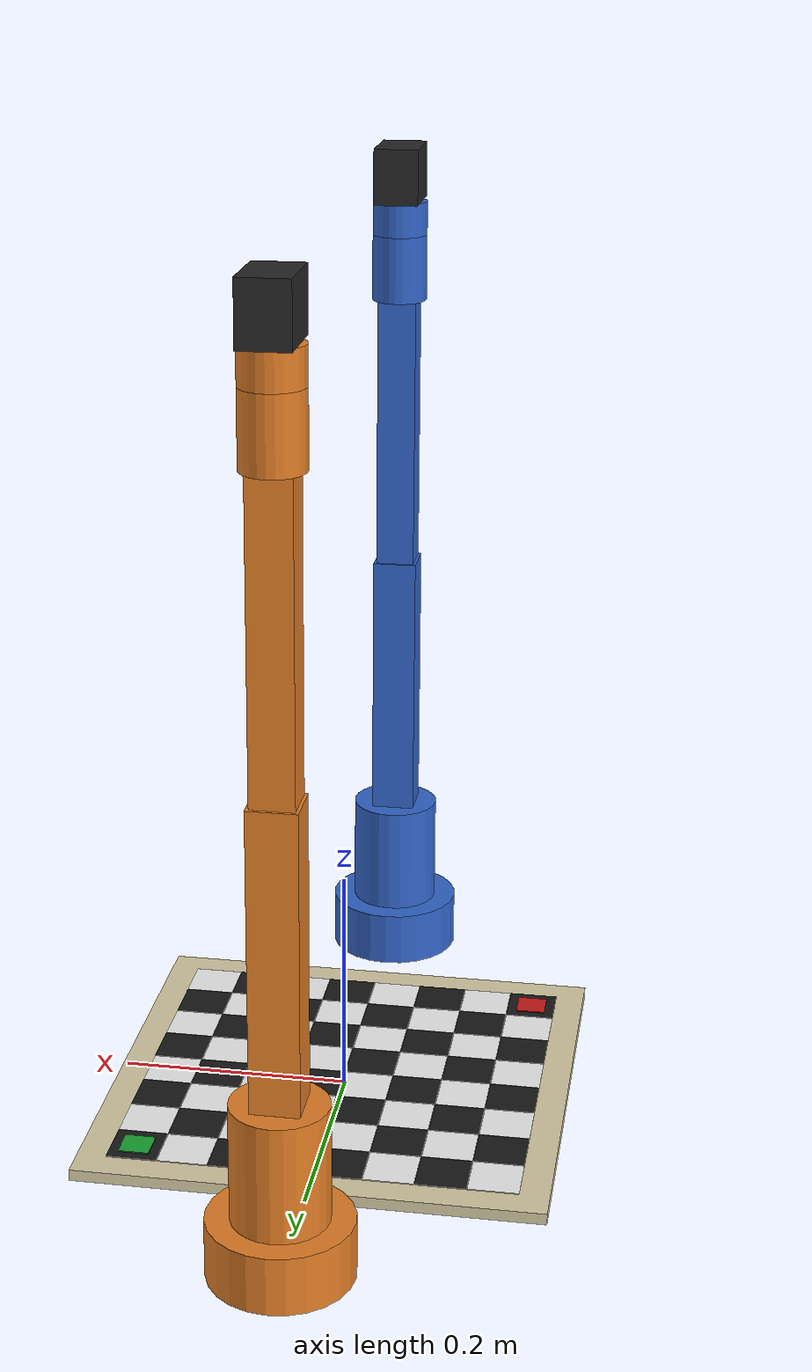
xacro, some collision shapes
<?xml version="1.0"?>
<robot name="dual_chess" xmlns:xacro="http://www.ros.org/wiki/xacro">

  <xacro:arg name="robot1_enabled" default="true"/>
  <xacro:arg name="robot2_enabled" default="true"/>
  <xacro:arg name="sim_gazebo"     default="false"/>
  <xacro:arg name="use_meshes"     default="false"/>

  <xacro:include filename="$(find dual_chess_description)/urdf/common/materials.xacro"/>
  <xacro:include filename="$(find dual_chess_description)/urdf/board/board.macro.xacro"/>
  <xacro:include filename="$(find dual_chess_description)/urdf/arm/arm.macro.xacro"/>
  <xacro:include filename="$(find dual_chess_description)/urdf/arm/arm.gazebo.xacro"/>

  <link name="world"/>

  <xacro:chess_board parent="world"/>

  <!-- Robot 1 (white side): -Y of the board, facing +Y.
       PLACEHOLDER pose; "rotated copy" vs true mirror is for M1/M3 to decide (proposal: "mirrored configurations"). -->
  <xacro:if value="$(arg robot1_enabled)">
    <xacro:chess_arm prefix="robot1_" parent="world" material="robot1_blue" use_meshes="$(arg use_meshes)">
      <origin xyz="0 ${-robot_base_offset} 0" rpy="0 0 ${pi/2}"/>
    </xacro:chess_arm>
  </xacro:if>

  <!-- Robot 2 (black side): +Y of the board, facing -Y. -->
  <xacro:if value="$(arg robot2_enabled)">
    <xacro:chess_arm prefix="robot2_" parent="world" material="robot2_orange" use_meshes="$(arg use_meshes)">
      <origin xyz="0 ${robot_base_offset} 0" rpy="0 0 ${-pi/2}"/>
    </xacro:chess_arm>
  </xacro:if>

  <!-- Gazebo-only parts -->
  <xacro:if value="$(arg sim_gazebo)">
    <!-- Publishes all joint states of the model to gz topic
         /world/chess_world/model/dual_chess/joint_state (bridged to /joint_states). -->
    <gazebo>
      <plugin filename="gz-sim-joint-state-publisher-system"
              name="gz::sim::systems::JointStatePublisher"/>
    </gazebo>
    <xacro:if value="$(arg robot1_enabled)">
      <xacro:chess_arm_gz prefix="robot1_" ns="robot1"/>
    </xacro:if>
    <xacro:if value="$(arg robot2_enabled)">
      <xacro:chess_arm_gz prefix="robot2_" ns="robot2"/>
    </xacro:if>
  </xacro:if>

</robot>

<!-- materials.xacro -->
<!-- Materials are defined ONCE (URDF material names are global). -->
<robot xmlns:xacro="http://www.ros.org/wiki/xacro">
  <material name="robot1_blue"><color rgba="0.20 0.40 0.80 1.0"/></material>
  <material name="robot2_orange"><color rgba="0.90 0.50 0.15 1.0"/></material>
  <material name="gripper_dark"><color rgba="0.15 0.15 0.15 1.0"/></material>
  <material name="board_wood"><color rgba="0.85 0.80 0.65 1.0"/></material>
  <material name="square_light"><color rgba="0.95 0.95 0.95 1.0"/></material>
  <material name="square_dark"><color rgba="0.10 0.10 0.10 1.0"/></material>
  <material name="marker_a1"><color rgba="0.80 0.10 0.10 1.0"/></material>
  <material name="marker_h8"><color rgba="0.10 0.65 0.20 1.0"/></material>
</robot>

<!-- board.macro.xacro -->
<robot xmlns:xacro="http://www.ros.org/wiki/xacro">
  <xacro:include filename="$(find dual_chess_description)/urdf/board/board_params_cad.xacro"/>

  <xacro:macro name="chess_board" params="parent">
    <link name="board_link">
      <visual name="board_cad_visual">
        <origin xyz="${-board_size/2} ${board_size/2} ${-board_thickness/2}"
                rpy="${pi/2} 0 0"/>
        <geometry>
          <mesh filename="package://dual_chess_description/meshes/chess_board/Board_1_original.STL"
                scale="0.001 0.001 0.001"/>
        </geometry>
        <!-- STL has no per-square material colours. Preserve its geometry. -->
        <material name="board_wood"/>
      </visual>

      <!-- Board squares are separate fixed child links below. RViz may apply the
           first material to all visuals if they share a single URDF link. -->
      <!-- Collision uses a simplified foundation (z=0..10 mm). -->
      <collision name="playing_area_collision">
        <origin xyz="0 0 ${-board_thickness/2 + board_play_surface_height/2}" rpy="0 0 0"/>
        <geometry><box size="${board_size} ${board_size} ${board_play_surface_height}"/></geometry>
      </collision>
      <!-- Four raised perimeter rails, preserving the 35cm playing area. -->
      <collision name="rim_left_collision">
        <origin xyz="${-board_size/2 + board_rim_width/2} 0 ${board_play_surface_height/2}"/>
        <geometry><box size="${board_rim_width} ${board_size} ${board_thickness - board_play_surface_height}"/></geometry>
      </collision>
      <collision name="rim_right_collision">
        <origin xyz="${board_size/2 - board_rim_width/2} 0 ${board_play_surface_height/2}"/>
        <geometry><box size="${board_rim_width} ${board_size} ${board_thickness - board_play_surface_height}"/></geometry>
      </collision>
      <collision name="rim_front_collision">
        <origin xyz="0 ${-board_size/2 + board_rim_width/2} ${board_play_surface_height/2}"/>
        <geometry><box size="${board_play_size} ${board_rim_width} ${board_thickness - board_play_surface_height}"/></geometry>
      </collision>
      <collision name="rim_back_collision">
        <origin xyz="0 ${board_size/2 - board_rim_width/2} ${board_play_surface_height/2}"/>
        <geometry><box size="${board_play_size} ${board_rim_width} ${board_thickness - board_play_surface_height}"/></geometry>
      </collision>

      <inertial>
        <origin xyz="0 0 0" rpy="0 0 0"/>
        <mass value="1.0"/>
        <inertia ixx="${(board_size*board_size+board_thickness*board_thickness)/12.0}" ixy="0" ixz="0"
                 iyy="${(board_size*board_size+board_thickness*board_thickness)/12.0}" iyz="0"
                 izz="${(2*board_size*board_size)/12.0}"/>
      </inertial>
    </link>

    <joint name="board_joint" type="fixed">
      <parent link="${parent}"/>
      <child link="board_link"/>
      <!-- Board rests on world z=0; link origin at the board vertical centre. -->
      <origin xyz="0 0 ${board_thickness/2}" rpy="0 0 0"/>
    </joint>

    <!-- Chessboard frame at the ACTUAL playing-square top plane z=10mm;
         raised outer frame reaches z=20.1892mm. -->
    <link name="board_surface"/>
    <joint name="board_surface_joint" type="fixed">
      <parent link="board_link"/>
      <child link="board_surface"/>
      <origin xyz="0 0 ${board_play_surface_height-board_thickness/2}" rpy="0 0 0"/>
    </joint>

    <xacro:property name="square_visual_size" value="${board_square*0.985}"/>
    <xacro:property name="square_visual_height" value="0.0008"/>
    <xacro:property name="square_visual_above_surface" value="0.0002"/>

    <link name="board_square_a1">
      <visual name="square_a1_visual">
        <origin xyz="0 0 ${square_visual_above_surface+square_visual_height/2}" rpy="0 0 0"/>
        <geometry><box size="${square_visual_size} ${square_visual_size} ${square_visual_height}"/></geometry>
        <material name="square_dark"/>
      </visual>
    </link>
    <joint name="board_square_a1_joint" type="fixed">
      <parent link="board_surface"/>
      <child link="board_square_a1"/>
      <origin xyz="${-3.5*board_square} ${-3.5*board_square} 0" rpy="0 0 0"/>
    </joint>

    <link name="board_square_b1">
      <visual name="square_b1_visual">
        <origin xyz="0 0 ${square_visual_above_surface+square_visual_height/2}" rpy="0 0 0"/>
        <geometry><box size="${square_visual_size} ${square_visual_size} ${square_visual_height}"/></geometry>
        <material name="square_light"/>
      </visual>
    </link>
    <joint name="board_square_b1_joint" type="fixed">
      <parent link="board_surface"/>
      <child link="board_square_b1"/>
      <origin xyz="${-2.5*board_square} ${-3.5*board_square} 0" rpy="0 0 0"/>
    </joint>

    <link name="board_square_c1">
      <visual name="square_c1_visual">
        <origin xyz="0 0 ${square_visual_above_surface+square_visual_height/2}" rpy="0 0 0"/>
        <geometry><box size="${square_visual_size} ${square_visual_size} ${square_visual_height}"/></geometry>
        <material name="square_dark"/>
      </visual>
    </link>
    <joint name="board_square_c1_joint" type="fixed">
      <parent link="board_surface"/>
      <child link="board_square_c1"/>
      <origin xyz="${-1.5*board_square} ${-3.5*board_square} 0" rpy="0 0 0"/>
    </joint>

    <link name="board_square_d1">
      <visual name="square_d1_visual">
        <origin xyz="0 0 ${square_visual_above_surface+square_visual_height/2}" rpy="0 0 0"/>
        <geometry><box size="${square_visual_size} ${square_visual_size} ${square_visual_height}"/></geometry>
        <material name="square_light"/>
      </visual>
    </link>
    <joint name="board_square_d1_joint" type="fixed">
      <parent link="board_surface"/>
      <child link="board_square_d1"/>
      <origin xyz="${-0.5*board_square} ${-3.5*board_square} 0" rpy="0 0 0"/>
    </joint>

    <link name="board_square_e1">
      <visual name="square_e1_visual">
        <origin xyz="0 0 ${square_visual_above_surface+square_visual_height/2}" rpy="0 0 0"/>
        <geometry><box size="${square_visual_size} ${square_visual_size} ${square_visual_height}"/></geometry>
        <material name="square_dark"/>
      </visual>
    </link>
    <joint name="board_square_e1_joint" type="fixed">
      <parent link="board_surface"/>
      <child link="board_square_e1"/>
      <origin xyz="${0.5*board_square} ${-3.5*board_square} 0" rpy="0 0 0"/>
    </joint>

    <link name="board_square_f1">
      <visual name="square_f1_visual">
        <origin xyz="0 0 ${square_visual_above_surface+square_visual_height/2}" rpy="0 0 0"/>
        <geometry><box size="${square_visual_size} ${square_visual_size} ${square_visual_height}"/></geometry>
        <material name="square_light"/>
      </visual>
    </link>
    <joint name="board_square_f1_joint" type="fixed">
      <parent link="board_surface"/>
      <child link="board_square_f1"/>
      <origin xyz="${1.5*board_square} ${-3.5*board_square} 0" rpy="0 0 0"/>
    </joint>

    <link name="board_square_g1">
      <visual name="square_g1_visual">
        <origin xyz="0 0 ${square_visual_above_surface+square_visual_height/2}" rpy="0 0 0"/>
        <geometry><box size="${square_visual_size} ${square_visual_size} ${square_visual_height}"/></geometry>
        <material name="square_dark"/>
      </visual>
    </link>
    <joint name="board_square_g1_joint" type="fixed">
      <parent link="board_surface"/>
      <child link="board_square_g1"/>
      <origin xyz="${2.5*board_square} ${-3.5*board_square} 0" rpy="0 0 0"/>
    </joint>

    <link name="board_square_h1">
      <visual name="square_h1_visual">
        <origin xyz="0 0 ${square_visual_above_surface+square_visual_height/2}" rpy="0 0 0"/>
        <geometry><box size="${square_visual_size} ${square_visual_size} ${square_visual_height}"/></geometry>
        <material name="square_light"/>
      </visual>
    </link>
    <joint name="board_square_h1_joint" type="fixed">
      <parent link="board_surface"/>
      <child link="board_square_h1"/>
      <origin xyz="${3.5*board_square} ${-3.5*board_square} 0" rpy="0 0 0"/>
    </joint>

    <link name="board_square_a2">
      <visual name="square_a2_visual">
        <origin xyz="0 0 ${square_visual_above_surface+square_visual_height/2}" rpy="0 0 0"/>
        <geometry><box size="${square_visual_size} ${square_visual_size} ${square_visual_height}"/></geometry>
        <material name="square_light"/>
      </visual>
    </link>
    <joint name="board_square_a2_joint" type="fixed">
      <parent link="board_surface"/>
      <child link="board_square_a2"/>
      <origin xyz="${-3.5*board_square} ${-2.5*board_square} 0" rpy="0 0 0"/>
    </joint>

    <link name="board_square_b2">
      <visual name="square_b2_visual">
        <origin xyz="0 0 ${square_visual_above_surface+square_visual_height/2}" rpy="0 0 0"/>
        <geometry><box size="${square_visual_size} ${square_visual_size} ${square_visual_height}"/></geometry>
        <material name="square_dark"/>
      </visual>
    </link>
    <joint name="board_square_b2_joint" type="fixed">
      <parent link="board_surface"/>
      <child link="board_square_b2"/>
      <origin xyz="${-2.5*board_square} ${-2.5*board_square} 0" rpy="0 0 0"/>
    </joint>

    <link name="board_square_c2">
      <visual name="square_c2_visual">
        <origin xyz="0 0 ${square_visual_above_surface+square_visual_height/2}" rpy="0 0 0"/>
        <geometry><box size="${square_visual_size} ${square_visual_size} ${square_visual_height}"/></geometry>
        <material name="square_light"/>
      </visual>
    </link>
    <joint name="board_square_c2_joint" type="fixed">
      <parent link="board_surface"/>
      <child link="board_square_c2"/>
      <origin xyz="${-1.5*board_square} ${-2.5*board_square} 0" rpy="0 0 0"/>
    </joint>

    <link name="board_square_d2">
      <visual name="square_d2_visual">
        <origin xyz="0 0 ${square_visual_above_surface+square_visual_height/2}" rpy="0 0 0"/>
        <geometry><box size="${square_visual_size} ${square_visual_size} ${square_visual_height}"/></geometry>
        <material name="square_dark"/>
      </visual>
    </link>
    <joint name="board_square_d2_joint" type="fixed">
      <parent link="board_surface"/>
      <child link="board_square_d2"/>
      <origin xyz="${-0.5*board_square} ${-2.5*board_square} 0" rpy="0 0 0"/>
    </joint>

    <link name="board_square_e2">
      <visual name="square_e2_visual">
        <origin xyz="0 0 ${square_visual_above_surface+square_visual_height/2}" rpy="0 0 0"/>
        <geometry><box size="${square_visual_size} ${square_visual_size} ${square_visual_height}"/></geometry>
        <material name="square_light"/>
      </visual>
    </link>
    <joint name="board_square_e2_joint" type="fixed">
      <parent link="board_surface"/>
      <child link="board_square_e2"/>
      <origin xyz="${0.5*board_square} ${-2.5*board_square} 0" rpy="0 0 0"/>
    </joint>

    <link name="board_square_f2">
      <visual name="square_f2_visual">
        <origin xyz="0 0 ${square_visual_above_surface+square_visual_height/2}" rpy="0 0 0"/>
        <geometry><box size="${square_visual_size} ${square_visual_size} ${square_visual_height}"/></geometry>
        <material name="square_dark"/>
      </visual>
    </link>
    <joint name="board_square_f2_joint" type="fixed">
      <parent link="board_surface"/>
      <child link="board_square_f2"/>
      <origin xyz="${1.5*board_square} ${-2.5*board_square} 0" rpy="0 0 0"/>
    </joint>

    <link name="board_square_g2">
      <visual name="square_g2_visual">
        <origin xyz="0 0 ${square_visual_above_surface+square_visual_height/2}" rpy="0 0 0"/>
        <geometry><box size="${square_visual_size} ${square_visual_size} ${square_visual_height}"/></geometry>
        <material name="square_light"/>
      </visual>
    </link>
    <joint name="board_square_g2_joint" type="fixed">
      <parent link="board_surface"/>
      <child link="board_square_g2"/>
      <origin xyz="${2.5*board_square} ${-2.5*board_square} 0" rpy="0 0 0"/>
    </joint>

    <link name="board_square_h2">
      <visual name="square_h2_visual">
        <origin xyz="0 0 ${square_visual_above_surface+square_visual_height/2}" rpy="0 0 0"/>
        <geometry><box size="${square_visual_size} ${square_visual_size} ${square_visual_height}"/></geometry>
        <material name="square_dark"/>
      </visual>
    </link>
    <joint name="board_square_h2_joint" type="fixed">
      <parent link="board_surface"/>
      <child link="board_square_h2"/>
      <origin xyz="${3.5*board_square} ${-2.5*board_square} 0" rpy="0 0 0"/>
    </joint>

    <link name="board_square_a3">
      <visual name="square_a3_visual">
        <origin xyz="0 0 ${square_visual_above_surface+square_visual_height/2}" rpy="0 0 0"/>
        <geometry><box size="${square_visual_size} ${square_visual_size} ${square_visual_height}"/></geometry>
        <material name="square_dark"/>
      </visual>
    </link>
    <joint name="board_square_a3_joint" type="fixed">
      <parent link="board_surface"/>
      <child link="board_square_a3"/>
      <origin xyz="${-3.5*board_square} ${-1.5*board_square} 0" rpy="0 0 0"/>
    </joint>

    <link name="board_square_b3">
      <visual name="square_b3_visual">
        <origin xyz="0 0 ${square_visual_above_surface+square_visual_height/2}" rpy="0 0 0"/>
        <geometry><box size="${square_visual_size} ${square_visual_size} ${square_visual_height}"/></geometry>
        <material name="square_light"/>
      </visual>
    </link>
    <joint name="board_square_b3_joint" type="fixed">
      <parent link="board_surface"/>
      <child link="board_square_b3"/>
      <origin xyz="${-2.5*board_square} ${-1.5*board_square} 0" rpy="0 0 0"/>
    </joint>

    <link name="board_square_c3">
      <visual name="square_c3_visual">
        <origin xyz="0 0 ${square_visual_above_surface+square_visual_height/2}" rpy="0 0 0"/>
        <geometry><box size="${square_visual_size} ${square_visual_size} ${square_visual_height}"/></geometry>
        <material name="square_dark"/>
      </visual>
    </link>
    <joint name="board_square_c3_joint" type="fixed">
      <parent link="board_surface"/>
      <child link="board_square_c3"/>
      <origin xyz="${-1.5*board_square} ${-1.5*board_square} 0" rpy="0 0 0"/>
    </joint>

    <link name="board_square_d3">
      <visual name="square_d3_visual">
        <origin xyz="0 0 ${square_visual_above_surface+square_visual_height/2}" rpy="0 0 0"/>
        <geometry><box size="${square_visual_size} ${square_visual_size} ${square_visual_height}"/></geometry>
        <material name="square_light"/>
      </visual>
    </link>
    <joint name="board_square_d3_joint" type="fixed">
      <parent link="board_surface"/>
      <child link="board_square_d3"/>
      <origin xyz="${-0.5*board_square} ${-1.5*board_square} 0" rpy="0 0 0"/>
    </joint>

    <link name="board_square_e3">
      <visual name="square_e3_visual">
        <origin xyz="0 0 ${square_visual_above_surface+square_visual_height/2}" rpy="0 0 0"/>
        <geometry><box size="${square_visual_size} ${square_visual_size} ${square_visual_height}"/></geometry>
        <material name="square_dark"/>
      </visual>
    </link>
    <joint name="board_square_e3_joint" type="fixed">
      <parent link="board_surface"/>
      <child link="board_square_e3"/>
      <origin xyz="${0.5*board_square} ${-1.5*board_square} 0" rpy="0 0 0"/>
    </joint>

    <link name="board_square_f3">
      <visual name="square_f3_visual">
        <origin xyz="0 0 ${square_visual_above_surface+square_visual_height/2}" rpy="0 0 0"/>
        <geometry><box size="${square_visual_size} ${square_visual_size} ${square_visual_height}"/></geometry>
        <material name="square_light"/>
      </visual>
    </link>
    <joint name="board_square_f3_joint" type="fixed">
      <parent link="board_surface"/>
      <child link="board_square_f3"/>
      <origin xyz="${1.5*board_square} ${-1.5*board_square} 0" rpy="0 0 0"/>
    </joint>

    <link name="board_square_g3">
      <visual name="square_g3_visual">
        <origin xyz="0 0 ${square_visual_above_surface+square_visual_height/2}" rpy="0 0 0"/>
        <geometry><box size="${square_visual_size} ${square_visual_size} ${square_visual_height}"/></geometry>
        <material name="square_dark"/>
      </visual>
    </link>
    <joint name="board_square_g3_joint" type="fixed">
      <parent link="board_surface"/>
      <child link="board_square_g3"/>
      <origin xyz="${2.5*board_square} ${-1.5*board_square} 0" rpy="0 0 0"/>
    </joint>

    <link name="board_square_h3">
      <visual name="square_h3_visual">
        <origin xyz="0 0 ${square_visual_above_surface+square_visual_height/2}" rpy="0 0 0"/>
        <geometry><box size="${square_visual_size} ${square_visual_size} ${square_visual_height}"/></geometry>
        <material name="square_light"/>
      </visual>
    </link>
    <joint name="board_square_h3_joint" type="fixed">
      <parent link="board_surface"/>
      <child link="board_square_h3"/>
      <origin xyz="${3.5*board_square} ${-1.5*board_square} 0" rpy="0 0 0"/>
    </joint>

    <link name="board_square_a4">
      <visual name="square_a4_visual">
        <origin xyz="0 0 ${square_visual_above_surface+square_visual_height/2}" rpy="0 0 0"/>
        <geometry><box size="${square_visual_size} ${square_visual_size} ${square_visual_height}"/></geometry>
        <material name="square_light"/>
      </visual>
    </link>
    <joint name="board_square_a4_joint" type="fixed">
      <parent link="board_surface"/>
      <child link="board_square_a4"/>
      <origin xyz="${-3.5*board_square} ${-0.5*board_square} 0" rpy="0 0 0"/>
    </joint>

    <link name="board_square_b4">
      <visual name="square_b4_visual">
        <origin xyz="0 0 ${square_visual_above_surface+square_visual_height/2}" rpy="0 0 0"/>
        <geometry><box size="${square_visual_size} ${square_visual_size} ${square_visual_height}"/></geometry>
        <material name="square_dark"/>
      </visual>
    </link>
    <joint name="board_square_b4_joint" type="fixed">
      <parent link="board_surface"/>
      <child link="board_square_b4"/>
      <origin xyz="${-2.5*board_square} ${-0.5*board_square} 0" rpy="0 0 0"/>
    </joint>

    <link name="board_square_c4">
      <visual name="square_c4_visual">
        <origin xyz="0 0 ${square_visual_above_surface+square_visual_height/2}" rpy="0 0 0"/>
        <geometry><box size="${square_visual_size} ${square_visual_size} ${square_visual_height}"/></geometry>
        <material name="square_light"/>
      </visual>
    </link>
    <joint name="board_square_c4_joint" type="fixed">
      <parent link="board_surface"/>
      <child link="board_square_c4"/>
      <origin xyz="${-1.5*board_square} ${-0.5*board_square} 0" rpy="0 0 0"/>
    </joint>

    <link name="board_square_d4">
      <visual name="square_d4_visual">
        <origin xyz="0 0 ${square_visual_above_surface+square_visual_height/2}" rpy="0 0 0"/>
        <geometry><box size="${square_visual_size} ${square_visual_size} ${square_visual_height}"/></geometry>
        <material name="square_dark"/>
      </visual>
    </link>
    <joint name="board_square_d4_joint" type="fixed">
      <parent link="board_surface"/>
      <child link="board_square_d4"/>
      <origin xyz="${-0.5*board_square} ${-0.5*board_square} 0" rpy="0 0 0"/>
    </joint>

    <link name="board_square_e4">
      <visual name="square_e4_visual">
        <origin xyz="0 0 ${square_visual_above_surface+square_visual_height/2}" rpy="0 0 0"/>
        <geometry><box size="${square_visual_size} ${square_visual_size} ${square_visual_height}"/></geometry>
        <material name="square_light"/>
      </visual>
    </link>
    <joint name="board_square_e4_joint" type="fixed">
      <parent link="board_surface"/>
      <child link="board_square_e4"/>
      <origin xyz="${0.5*board_square} ${-0.5*board_square} 0" rpy="0 0 0"/>
    </joint>

    <link name="board_square_f4">
      <visual name="square_f4_visual">
        <origin xyz="0 0 ${square_visual_above_surface+square_visual_height/2}" rpy="0 0 0"/>
        <geometry><box size="${square_visual_size} ${square_visual_size} ${square_visual_height}"/></geometry>
        <material name="square_dark"/>
      </visual>
    </link>
    <joint name="board_square_f4_joint" type="fixed">
      <parent link="board_surface"/>
      <child link="board_square_f4"/>
      <origin xyz="${1.5*board_square} ${-0.5*board_square} 0" rpy="0 0 0"/>
    </joint>

    <link name="board_square_g4">
      <visual name="square_g4_visual">
        <origin xyz="0 0 ${square_visual_above_surface+square_visual_height/2}" rpy="0 0 0"/>
        <geometry><box size="${square_visual_size} ${square_visual_size} ${square_visual_height}"/></geometry>
        <material name="square_light"/>
      </visual>
    </link>
    <joint name="board_square_g4_joint" type="fixed">
      <parent link="board_surface"/>
      <child link="board_square_g4"/>
      <origin xyz="${2.5*board_square} ${-0.5*board_square} 0" rpy="0 0 0"/>
    </joint>

    <link name="board_square_h4">
      <visual name="square_h4_visual">
        <origin xyz="0 0 ${square_visual_above_surface+square_visual_height/2}" rpy="0 0 0"/>
        <geometry><box size="${square_visual_size} ${square_visual_size} ${square_visual_height}"/></geometry>
        <material name="square_dark"/>
      </visual>
    </link>
    <joint name="board_square_h4_joint" type="fixed">
      <parent link="board_surface"/>
      <child link="board_square_h4"/>
      <origin xyz="${3.5*board_square} ${-0.5*board_square} 0" rpy="0 0 0"/>
    </joint>

    <link name="board_square_a5">
      <visual name="square_a5_visual">
        <origin xyz="0 0 ${square_visual_above_surface+square_visual_height/2}" rpy="0 0 0"/>
        <geometry><box size="${square_visual_size} ${square_visual_size} ${square_visual_height}"/></geometry>
        <material name="square_dark"/>
      </visual>
    </link>
    <joint name="board_square_a5_joint" type="fixed">
      <parent link="board_surface"/>
      <child link="board_square_a5"/>
      <origin xyz="${-3.5*board_square} ${0.5*board_square} 0" rpy="0 0 0"/>
    </joint>

    <link name="board_square_b5">
      <visual name="square_b5_visual">
        <origin xyz="0 0 ${square_visual_above_surface+square_visual_height/2}" rpy="0 0 0"/>
        <geometry><box size="${square_visual_size} ${square_visual_size} ${square_visual_height}"/></geometry>
        <material name="square_light"/>
      </visual>
    </link>
    <joint name="board_square_b5_joint" type="fixed">
      <parent link="board_surface"/>
      <child link="board_square_b5"/>
      <origin xyz="${-2.5*board_square} ${0.5*board_square} 0" rpy="0 0 0"/>
    </joint>

    <link name="board_square_c5">
      <visual name="square_c5_visual">
        <origin xyz="0 0 ${square_visual_above_surface+square_visual_height/2}" rpy="0 0 0"/>
        <geometry><box size="${square_visual_size} ${square_visual_size} ${square_visual_height}"/></geometry>
        <material name="square_dark"/>
      </visual>
    </link>
    <joint name="board_square_c5_joint" type="fixed">
      <parent link="board_surface"/>
      <child link="board_square_c5"/>
      <origin xyz="${-1.5*board_square} ${0.5*board_square} 0" rpy="0 0 0"/>
    </joint>

    <link name="board_square_d5">
      <visual name="square_d5_visual">
        <origin xyz="0 0 ${square_visual_above_surface+square_visual_height/2}" rpy="0 0 0"/>
        <geometry><box size="${square_visual_size} ${square_visual_size} ${square_visual_height}"/></geometry>
        <material name="square_light"/>
      </visual>
    </link>
    <joint name="board_square_d5_joint" type="fixed">
      <parent link="board_surface"/>
      <child link="board_square_d5"/>
      <origin xyz="${-0.5*board_square} ${0.5*board_square} 0" rpy="0 0 0"/>
    </joint>

    <link name="board_square_e5">
      <visual name="square_e5_visual">
        <origin xyz="0 0 ${square_visual_above_surface+square_visual_height/2}" rpy="0 0 0"/>
        <geometry><box size="${square_visual_size} ${square_visual_size} ${square_visual_height}"/></geometry>
        <material name="square_dark"/>
      </visual>
    </link>
    <joint name="board_square_e5_joint" type="fixed">
      <parent link="board_surface"/>
      <child link="board_square_e5"/>
      <origin xyz="${0.5*board_square} ${0.5*board_square} 0" rpy="0 0 0"/>
    </joint>

    <link name="board_square_f5">
      <visual name="square_f5_visual">
        <origin xyz="0 0 ${square_visual_above_surface+square_visual_height/2}" rpy="0 0 0"/>
        <geometry><box size="${square_visual_size} ${square_visual_size} ${square_visual_height}"/></geometry>
        <material name="square_light"/>
      </visual>
    </link>
    <joint name="board_square_f5_joint" type="fixed">
      <parent link="board_surface"/>
      <child link="board_square_f5"/>
      <origin xyz="${1.5*board_square} ${0.5*board_square} 0" rpy="0 0 0"/>
    </joint>

    <link name="board_square_g5">
      <visual name="square_g5_visual">
        <origin xyz="0 0 ${square_visual_above_surface+square_visual_height/2}" rpy="0 0 0"/>
        <geometry><box size="${square_visual_size} ${square_visual_size} ${square_visual_height}"/></geometry>
        <material name="square_dark"/>
      </visual>
    </link>
    <joint name="board_square_g5_joint" type="fixed">
      <parent link="board_surface"/>
      <child link="board_square_g5"/>
      <origin xyz="${2.5*board_square} ${0.5*board_square} 0" rpy="0 0 0"/>
    </joint>

    <link name="board_square_h5">
      <visual name="square_h5_visual">
        <origin xyz="0 0 ${square_visual_above_surface+square_visual_height/2}" rpy="0 0 0"/>
        <geometry><box size="${square_visual_size} ${square_visual_size} ${square_visual_height}"/></geometry>
        <material name="square_light"/>
      </visual>
    </link>
    <joint name="board_square_h5_joint" type="fixed">
      <parent link="board_surface"/>
      <child link="board_square_h5"/>
      <origin xyz="${3.5*board_square} ${0.5*board_square} 0" rpy="0 0 0"/>
    </joint>

    <link name="board_square_a6">
      <visual name="square_a6_visual">
        <origin xyz="0 0 ${square_visual_above_surface+square_visual_height/2}" rpy="0 0 0"/>
        <geometry><box size="${square_visual_size} ${square_visual_size} ${square_visual_height}"/></geometry>
        <material name="square_light"/>
      </visual>
    </link>
    <joint name="board_square_a6_joint" type="fixed">
      <parent link="board_surface"/>
      <child link="board_square_a6"/>
      <origin xyz="${-3.5*board_square} ${1.5*board_square} 0" rpy="0 0 0"/>
    </joint>

    <link name="board_square_b6">
      <visual name="square_b6_visual">
        <origin xyz="0 0 ${square_visual_above_surface+square_visual_height/2}" rpy="0 0 0"/>
        <geometry><box size="${square_visual_size} ${square_visual_size} ${square_visual_height}"/></geometry>
        <material name="square_dark"/>
      </visual>
    </link>
    <joint name="board_square_b6_joint" type="fixed">
      <parent link="board_surface"/>
      <child link="board_square_b6"/>
      <origin xyz="${-2.5*board_square} ${1.5*board_square} 0" rpy="0 0 0"/>
    </joint>

    <link name="board_square_c6">
      <visual name="square_c6_visual">
        <origin xyz="0 0 ${square_visual_above_surface+square_visual_height/2}" rpy="0 0 0"/>
        <geometry><box size="${square_visual_size} ${square_visual_size} ${square_visual_height}"/></geometry>
        <material name="square_light"/>
      </visual>
    </link>
    <joint name="board_square_c6_joint" type="fixed">
      <parent link="board_surface"/>
      <child link="board_square_c6"/>
      <origin xyz="${-1.5*board_square} ${1.5*board_square} 0" rpy="0 0 0"/>
    </joint>

    <link name="board_square_d6">
      <visual name="square_d6_visual">
        <origin xyz="0 0 ${square_visual_above_surface+square_visual_height/2}" rpy="0 0 0"/>
        <geometry><box size="${square_visual_size} ${square_visual_size} ${square_visual_height}"/></geometry>
        <material name="square_dark"/>
      </visual>
    </link>
    <joint name="board_square_d6_joint" type="fixed">
      <parent link="board_surface"/>
      <child link="board_square_d6"/>
      <origin xyz="${-0.5*board_square} ${1.5*board_square} 0" rpy="0 0 0"/>
    </joint>

    <link name="board_square_e6">
      <visual name="square_e6_visual">
        <origin xyz="0 0 ${square_visual_above_surface+square_visual_height/2}" rpy="0 0 0"/>
        <geometry><box size="${square_visual_size} ${square_visual_size} ${square_visual_height}"/></geometry>
        <material name="square_light"/>
      </visual>
    </link>
    <joint name="board_square_e6_joint" type="fixed">
      <parent link="board_surface"/>
      <child link="board_square_e6"/>
      <origin xyz="${0.5*board_square} ${1.5*board_square} 0" rpy="0 0 0"/>
    </joint>

    <link name="board_square_f6">
      <visual name="square_f6_visual">
        <origin xyz="0 0 ${square_visual_above_surface+square_visual_height/2}" rpy="0 0 0"/>
        <geometry><box size="${square_visual_size} ${square_visual_size} ${square_visual_height}"/></geometry>
        <material name="square_dark"/>
      </visual>
    </link>
    <joint name="board_square_f6_joint" type="fixed">
      <parent link="board_surface"/>
      <child link="board_square_f6"/>
      <origin xyz="${1.5*board_square} ${1.5*board_square} 0" rpy="0 0 0"/>
    </joint>

    <link name="board_square_g6">
      <visual name="square_g6_visual">
        <origin xyz="0 0 ${square_visual_above_surface+square_visual_height/2}" rpy="0 0 0"/>
        <geometry><box size="${square_visual_size} ${square_visual_size} ${square_visual_height}"/></geometry>
        <material name="square_light"/>
      </visual>
    </link>
    <joint name="board_square_g6_joint" type="fixed">
      <parent link="board_surface"/>
      <child link="board_square_g6"/>
      <origin xyz="${2.5*board_square} ${1.5*board_square} 0" rpy="0 0 0"/>
    </joint>

    <link name="board_square_h6">
      <visual name="square_h6_visual">
        <origin xyz="0 0 ${square_visual_above_surface+square_visual_height/2}" rpy="0 0 0"/>
        <geometry><box size="${square_visual_size} ${square_visual_size} ${square_visual_height}"/></geometry>
        <material name="square_dark"/>
      </visual>
    </link>
    <joint name="board_square_h6_joint" type="fixed">
      <parent link="board_surface"/>
      <child link="board_square_h6"/>
      <origin xyz="${3.5*board_square} ${1.5*board_square} 0" rpy="0 0 0"/>
    </joint>

    <link name="board_square_a7">
      <visual name="square_a7_visual">
        <origin xyz="0 0 ${square_visual_above_surface+square_visual_height/2}" rpy="0 0 0"/>
        <geometry><box size="${square_visual_size} ${square_visual_size} ${square_visual_height}"/></geometry>
        <material name="square_dark"/>
      </visual>
    </link>
    <joint name="board_square_a7_joint" type="fixed">
      <parent link="board_surface"/>
      <child link="board_square_a7"/>
      <origin xyz="${-3.5*board_square} ${2.5*board_square} 0" rpy="0 0 0"/>
    </joint>

    <link name="board_square_b7">
      <visual name="square_b7_visual">
        <origin xyz="0 0 ${square_visual_above_surface+square_visual_height/2}" rpy="0 0 0"/>
        <geometry><box size="${square_visual_size} ${square_visual_size} ${square_visual_height}"/></geometry>
        <material name="square_light"/>
      </visual>
    </link>
    <joint name="board_square_b7_joint" type="fixed">
      <parent link="board_surface"/>
      <child link="board_square_b7"/>
      <origin xyz="${-2.5*board_square} ${2.5*board_square} 0" rpy="0 0 0"/>
    </joint>

    <link name="board_square_c7">
      <visual name="square_c7_visual">
        <origin xyz="0 0 ${square_visual_above_surface+square_visual_height/2}" rpy="0 0 0"/>
        <geometry><box size="${square_visual_size} ${square_visual_size} ${square_visual_height}"/></geometry>
        <material name="square_dark"/>
      </visual>
    </link>
    <joint name="board_square_c7_joint" type="fixed">
      <parent link="board_surface"/>
      <child link="board_square_c7"/>
      <origin xyz="${-1.5*board_square} ${2.5*board_square} 0" rpy="0 0 0"/>
    </joint>

    <link name="board_square_d7">
      <visual name="square_d7_visual">
        <origin xyz="0 0 ${square_visual_above_surface+square_visual_height/2}" rpy="0 0 0"/>
        <geometry><box size="${square_visual_size} ${square_visual_size} ${square_visual_height}"/></geometry>
        <material name="square_light"/>
      </visual>
    </link>
    <joint name="board_square_d7_joint" type="fixed">
      <parent link="board_surface"/>
      <child link="board_square_d7"/>
      <origin xyz="${-0.5*board_square} ${2.5*board_square} 0" rpy="0 0 0"/>
    </joint>

    <link name="board_square_e7">
      <visual name="square_e7_visual">
        <origin xyz="0 0 ${square_visual_above_surface+square_visual_height/2}" rpy="0 0 0"/>
        <geometry><box size="${square_visual_size} ${square_visual_size} ${square_visual_height}"/></geometry>
        <material name="square_dark"/>
      </visual>
    </link>
    <joint name="board_square_e7_joint" type="fixed">
      <parent link="board_surface"/>
      <child link="board_square_e7"/>
      <origin xyz="${0.5*board_square} ${2.5*board_square} 0" rpy="0 0 0"/>
    </joint>

    <link name="board_square_f7">
      <visual name="square_f7_visual">
        <origin xyz="0 0 ${square_visual_above_surface+square_visual_height/2}" rpy="0 0 0"/>
        <geometry><box size="${square_visual_size} ${square_visual_size} ${square_visual_height}"/></geometry>
        <material name="square_light"/>
      </visual>
    </link>
    <joint name="board_square_f7_joint" type="fixed">
      <parent link="board_surface"/>
      <child link="board_square_f7"/>
      <origin xyz="${1.5*board_square} ${2.5*board_square} 0" rpy="0 0 0"/>
    </joint>

    <link name="board_square_g7">
      <visual name="square_g7_visual">
        <origin xyz="0 0 ${square_visual_above_surface+square_visual_height/2}" rpy="0 0 0"/>
        <geometry><box size="${square_visual_size} ${square_visual_size} ${square_visual_height}"/></geometry>
        <material name="square_dark"/>
      </visual>
    </link>
    <joint name="board_square_g7_joint" type="fixed">
      <parent link="board_surface"/>
      <child link="board_square_g7"/>
      <origin xyz="${2.5*board_square} ${2.5*board_square} 0" rpy="0 0 0"/>
    </joint>

    <link name="board_square_h7">
      <visual name="square_h7_visual">
        <origin xyz="0 0 ${square_visual_above_surface+square_visual_height/2}" rpy="0 0 0"/>
        <geometry><box size="${square_visual_size} ${square_visual_size} ${square_visual_height}"/></geometry>
        <material name="square_light"/>
      </visual>
    </link>
    <joint name="board_square_h7_joint" type="fixed">
      <parent link="board_surface"/>
      <child link="board_square_h7"/>
      <origin xyz="${3.5*board_square} ${2.5*board_square} 0" rpy="0 0 0"/>
    </joint>

    <link name="board_square_a8">
      <visual name="square_a8_visual">
        <origin xyz="0 0 ${square_visual_above_surface+square_visual_height/2}" rpy="0 0 0"/>
        <geometry><box size="${square_visual_size} ${square_visual_size} ${square_visual_height}"/></geometry>
        <material name="square_light"/>
      </visual>
    </link>
    <joint name="board_square_a8_joint" type="fixed">
      <parent link="board_surface"/>
      <child link="board_square_a8"/>
      <origin xyz="${-3.5*board_square} ${3.5*board_square} 0" rpy="0 0 0"/>
    </joint>

    <link name="board_square_b8">
      <visual name="square_b8_visual">
        <origin xyz="0 0 ${square_visual_above_surface+square_visual_height/2}" rpy="0 0 0"/>
        <geometry><box size="${square_visual_size} ${square_visual_size} ${square_visual_height}"/></geometry>
        <material name="square_dark"/>
      </visual>
    </link>
    <joint name="board_square_b8_joint" type="fixed">
      <parent link="board_surface"/>
      <child link="board_square_b8"/>
      <origin xyz="${-2.5*board_square} ${3.5*board_square} 0" rpy="0 0 0"/>
    </joint>

    <link name="board_square_c8">
      <visual name="square_c8_visual">
        <origin xyz="0 0 ${square_visual_above_surface+square_visual_height/2}" rpy="0 0 0"/>
        <geometry><box size="${square_visual_size} ${square_visual_size} ${square_visual_height}"/></geometry>
        <material name="square_light"/>
      </visual>
    </link>
    <joint name="board_square_c8_joint" type="fixed">
      <parent link="board_surface"/>
      <child link="board_square_c8"/>
      <origin xyz="${-1.5*board_square} ${3.5*board_square} 0" rpy="0 0 0"/>
    </joint>

    <link name="board_square_d8">
      <visual name="square_d8_visual">
        <origin xyz="0 0 ${square_visual_above_surface+square_visual_height/2}" rpy="0 0 0"/>
        <geometry><box size="${square_visual_size} ${square_visual_size} ${square_visual_height}"/></geometry>
        <material name="square_dark"/>
      </visual>
    </link>
    <joint name="board_square_d8_joint" type="fixed">
      <parent link="board_surface"/>
      <child link="board_square_d8"/>
      <origin xyz="${-0.5*board_square} ${3.5*board_square} 0" rpy="0 0 0"/>
    </joint>

    <link name="board_square_e8">
      <visual name="square_e8_visual">
        <origin xyz="0 0 ${square_visual_above_surface+square_visual_height/2}" rpy="0 0 0"/>
        <geometry><box size="${square_visual_size} ${square_visual_size} ${square_visual_height}"/></geometry>
        <material name="square_light"/>
      </visual>
    </link>
    <joint name="board_square_e8_joint" type="fixed">
      <parent link="board_surface"/>
      <child link="board_square_e8"/>
      <origin xyz="${0.5*board_square} ${3.5*board_square} 0" rpy="0 0 0"/>
    </joint>

    <link name="board_square_f8">
      <visual name="square_f8_visual">
        <origin xyz="0 0 ${square_visual_above_surface+square_visual_height/2}" rpy="0 0 0"/>
        <geometry><box size="${square_visual_size} ${square_visual_size} ${square_visual_height}"/></geometry>
        <material name="square_dark"/>
      </visual>
    </link>
    <joint name="board_square_f8_joint" type="fixed">
      <parent link="board_surface"/>
      <child link="board_square_f8"/>
      <origin xyz="${1.5*board_square} ${3.5*board_square} 0" rpy="0 0 0"/>
    </joint>

    <link name="board_square_g8">
      <visual name="square_g8_visual">
        <origin xyz="0 0 ${square_visual_above_surface+square_visual_height/2}" rpy="0 0 0"/>
        <geometry><box size="${square_visual_size} ${square_visual_size} ${square_visual_height}"/></geometry>
        <material name="square_light"/>
      </visual>
    </link>
    <joint name="board_square_g8_joint" type="fixed">
      <parent link="board_surface"/>
      <child link="board_square_g8"/>
      <origin xyz="${2.5*board_square} ${3.5*board_square} 0" rpy="0 0 0"/>
    </joint>

    <link name="board_square_h8">
      <visual name="square_h8_visual">
        <origin xyz="0 0 ${square_visual_above_surface+square_visual_height/2}" rpy="0 0 0"/>
        <geometry><box size="${square_visual_size} ${square_visual_size} ${square_visual_height}"/></geometry>
        <material name="square_dark"/>
      </visual>
    </link>
    <joint name="board_square_h8_joint" type="fixed">
      <parent link="board_surface"/>
      <child link="board_square_h8"/>
      <origin xyz="${3.5*board_square} ${3.5*board_square} 0" rpy="0 0 0"/>
    </joint>

    <link name="board_a1">
      <visual>
        <origin xyz="0 0 0.001"/>
        <geometry><box size="${board_square*0.6} ${board_square*0.6} 0.002"/></geometry>
        <material name="marker_a1"/>
      </visual>
    </link>
    <joint name="board_a1_joint" type="fixed">
      <parent link="board_surface"/>
      <child link="board_a1"/>
      <origin xyz="${-3.5*board_square} ${-3.5*board_square} 0" rpy="0 0 0"/>
    </joint>

    <link name="board_h8">
      <visual>
        <origin xyz="0 0 0.001"/>
        <geometry><box size="${board_square*0.6} ${board_square*0.6} 0.002"/></geometry>
        <material name="marker_h8"/>
      </visual>
    </link>
    <joint name="board_h8_joint" type="fixed">
      <parent link="board_surface"/>
      <child link="board_h8"/>
      <origin xyz="${3.5*board_square} ${3.5*board_square} 0" rpy="0 0 0"/>
    </joint>
  </xacro:macro>
</robot>

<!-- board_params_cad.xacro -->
<robot xmlns:xacro="http://www.ros.org/wiki/xacro">
  <xacro:property name="board_size" value="0.4"/>
  <xacro:property name="board_play_size" value="0.35"/>
  <xacro:property name="board_square" value="${board_play_size/8}"/>
  <xacro:property name="board_thickness" value="0.020189205169677734"/>
  <xacro:property name="board_play_surface_height" value="0.010"/>
  <xacro:property name="board_rim_width" value="${(board_size-board_play_size)/2}"/>
  <xacro:property name="base_gap" value="0.10"/>
  <xacro:property name="robot_base_offset" value="${board_size/2 + base_gap}"/>
</robot>

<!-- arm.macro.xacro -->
<robot xmlns:xacro="http://www.ros.org/wiki/xacro">
  <xacro:include filename="$(find dual_chess_description)/urdf/common/inertial_macros.xacro"/>
  <xacro:include filename="$(find dual_chess_description)/urdf/arm/arm_params_placeholder.xacro"/>

  <!-- geom: 'cyl' -> radius=a, length=h ; 'box' -> size = a x b x h.
       Link frame = bottom/proximal joint axis; geometry extends along +Z. -->
  <xacro:macro name="arm_link" params="prefix name geom mass a b h material use_meshes">
    <link name="${prefix}${name}">
      <visual>
        <xacro:if value="${use_meshes}">
          <geometry>
            <mesh filename="package://dual_chess_description/meshes/visual/arm/${name}.stl" scale="${arm_mesh_scale}"/>
          </geometry>
        </xacro:if>
        <xacro:unless value="${use_meshes}">
          <origin xyz="0 0 ${h/2}" rpy="0 0 0"/>
          <xacro:if value="${geom == 'cyl'}">
            <geometry><cylinder radius="${a}" length="${h}"/></geometry>
          </xacro:if>
          <xacro:if value="${geom == 'box'}">
            <geometry><box size="${a} ${b} ${h}"/></geometry>
          </xacro:if>
        </xacro:unless>
        <material name="${material}"/>
      </visual>
      <collision>
        <xacro:if value="${use_meshes}">
          <geometry>
            <mesh filename="package://dual_chess_description/meshes/collision/arm/${name}.stl" scale="${arm_mesh_scale}"/>
          </geometry>
        </xacro:if>
        <xacro:unless value="${use_meshes}">
          <origin xyz="0 0 ${h/2}" rpy="0 0 0"/>
          <xacro:if value="${geom == 'cyl'}">
            <geometry><cylinder radius="${a}" length="${h}"/></geometry>
          </xacro:if>
          <xacro:if value="${geom == 'box'}">
            <geometry><box size="${a} ${b} ${h}"/></geometry>
          </xacro:if>
        </xacro:unless>
      </collision>
      <!-- PLACEHOLDER inertial: primitive solid, COM at geometric centre.
           TODO: replace with CAD mass properties from M1. -->
      <inertial>
        <origin xyz="0 0 ${h/2}" rpy="0 0 0"/>
        <mass value="${mass}"/>
        <xacro:if value="${geom == 'cyl'}">
          <xacro:cylinder_inertia m="${mass}" r="${a}" h="${h}"/>
        </xacro:if>
        <xacro:if value="${geom == 'box'}">
          <xacro:box_inertia m="${mass}" x="${a}" y="${b}" z="${h}"/>
        </xacro:if>
      </inertial>
    </link>
  </xacro:macro>

  <xacro:macro name="arm_joint" params="prefix name parent child z axis lower upper">
    <joint name="${prefix}${name}" type="revolute">
      <parent link="${prefix}${parent}"/>
      <child link="${prefix}${child}"/>
      <origin xyz="0 0 ${z}" rpy="0 0 0"/>
      <axis xyz="${axis}"/>
      <limit lower="${lower}" upper="${upper}" effort="${arm_effort_limit}" velocity="${arm_velocity_limit}"/>
      <dynamics damping="${arm_joint_damping}" friction="${arm_joint_friction}"/>
    </joint>
  </xacro:macro>

  <xacro:macro name="chess_arm" params="prefix parent material use_meshes *origin">

    <xacro:arm_link prefix="${prefix}" name="base_link" geom="cyl" mass="${arm_base_mass}"
                    a="${arm_base_radius}" b="0" h="${arm_base_height}" material="${material}" use_meshes="${use_meshes}"/>
    <joint name="${prefix}mount_joint" type="fixed">
      <parent link="${parent}"/>
      <child link="${prefix}base_link"/>
      <xacro:insert_block name="origin"/>
    </joint>

    <!-- link1: shoulder column, joint1 = base yaw (axis Z) -->
    <xacro:arm_link prefix="${prefix}" name="link1" geom="cyl" mass="${arm_link1_mass}"
                    a="${arm_link1_radius}" b="0" h="${arm_link1_len}" material="${material}" use_meshes="${use_meshes}"/>
    <xacro:arm_joint prefix="${prefix}" name="joint1" parent="base_link" child="link1" z="${arm_base_height}"
                     axis="0 0 1" lower="${arm_j1_lower}" upper="${arm_j1_upper}"/>

    <!-- link2: upper arm, joint2 = shoulder pitch (axis Y) -->
    <xacro:arm_link prefix="${prefix}" name="link2" geom="box" mass="${arm_link2_mass}"
                    a="${arm_link2_width}" b="${arm_link2_width}" h="${arm_link2_len}" material="${material}" use_meshes="${use_meshes}"/>
    <xacro:arm_joint prefix="${prefix}" name="joint2" parent="link1" child="link2" z="${arm_link1_len}"
                     axis="0 1 0" lower="${arm_j2_lower}" upper="${arm_j2_upper}"/>

    <!-- link3: forearm, joint3 = elbow pitch (axis Y) -->
    <xacro:arm_link prefix="${prefix}" name="link3" geom="box" mass="${arm_link3_mass}"
                    a="${arm_link3_width}" b="${arm_link3_width}" h="${arm_link3_len}" material="${material}" use_meshes="${use_meshes}"/>
    <xacro:arm_joint prefix="${prefix}" name="joint3" parent="link2" child="link3" z="${arm_link2_len}"
                     axis="0 1 0" lower="${arm_j3_lower}" upper="${arm_j3_upper}"/>

    <!-- link4: wrist pitch body, joint4 (axis Y) -->
    <xacro:arm_link prefix="${prefix}" name="link4" geom="cyl" mass="${arm_link4_mass}"
                    a="${arm_link4_radius}" b="0" h="${arm_link4_len}" material="${material}" use_meshes="${use_meshes}"/>
    <xacro:arm_joint prefix="${prefix}" name="joint4" parent="link3" child="link4" z="${arm_link3_len}"
                     axis="0 1 0" lower="${arm_j4_lower}" upper="${arm_j4_upper}"/>

    <!-- link5: wrist roll flange, joint5 (axis Z) -->
    <xacro:arm_link prefix="${prefix}" name="link5" geom="cyl" mass="${arm_link5_mass}"
                    a="${arm_link5_radius}" b="0" h="${arm_link5_len}" material="${material}" use_meshes="${use_meshes}"/>
    <xacro:arm_joint prefix="${prefix}" name="joint5" parent="link4" child="link5" z="${arm_link4_len}"
                     axis="0 0 1" lower="${arm_j5_lower}" upper="${arm_j5_upper}"/>

    <!-- gripper_link: PLACEHOLDER body (M2 owns the real gripper). Fixed to link5. -->
    <xacro:arm_link prefix="${prefix}" name="gripper_link" geom="box" mass="${gripper_mass}"
                    a="${gripper_width}" b="${gripper_depth}" h="${gripper_len}" material="gripper_dark" use_meshes="${use_meshes}"/>
    <joint name="${prefix}gripper_joint" type="fixed">
      <parent link="${prefix}link5"/>
      <child link="${prefix}gripper_link"/>
      <origin xyz="0 0 ${arm_link5_len}" rpy="0 0 0"/>
    </joint>

    <!-- tcp_link: tool centre point, the frame IK (M3) will target. TODO: offset from M2/M3. -->
    <link name="${prefix}tcp_link"/>
    <joint name="${prefix}tcp_joint" type="fixed">
      <parent link="${prefix}gripper_link"/>
      <child link="${prefix}tcp_link"/>
      <origin xyz="0 0 ${gripper_len}" rpy="0 0 0"/>
    </joint>
  </xacro:macro>
</robot>

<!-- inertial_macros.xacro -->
<robot xmlns:xacro="http://www.ros.org/wiki/xacro">
  <xacro:macro name="box_inertia" params="m x y z">
    <inertia ixx="${m*(y*y+z*z)/12.0}" ixy="0" ixz="0"
             iyy="${m*(x*x+z*z)/12.0}" iyz="0"
             izz="${m*(x*x+y*y)/12.0}"/>
  </xacro:macro>

  <!-- cylinder axis along local Z -->
  <xacro:macro name="cylinder_inertia" params="m r h">
    <inertia ixx="${m*(3.0*r*r+h*h)/12.0}" ixy="0" ixz="0"
             iyy="${m*(3.0*r*r+h*h)/12.0}" iyz="0"
             izz="${m*r*r/2.0}"/>
  </xacro:macro>
</robot>

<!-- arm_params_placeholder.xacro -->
<robot xmlns:xacro="http://www.ros.org/wiki/xacro">

  <!-- PLACEHOLDER — final value must come from M1: base size -->
  <xacro:property name="arm_base_radius"  value="0.06"/>
  <xacro:property name="arm_base_height"  value="0.05"/>

  <!-- PLACEHOLDER — final value must come from M1/M3: link sizes -->
  <xacro:property name="arm_link1_radius" value="0.04"/>
  <xacro:property name="arm_link1_len"    value="0.10"/>
  <xacro:property name="arm_link2_width"  value="0.04"/>
  <xacro:property name="arm_link2_len"    value="0.25"/>
  <xacro:property name="arm_link3_width"  value="0.035"/>
  <xacro:property name="arm_link3_len"    value="0.25"/>
  <xacro:property name="arm_link4_radius" value="0.025"/>
  <xacro:property name="arm_link4_len"    value="0.06"/>
  <xacro:property name="arm_link5_radius" value="0.025"/>
  <xacro:property name="arm_link5_len"    value="0.03"/>

  <!-- PLACEHOLDER — final value must come from M1 (CAD mass properties) -->
  <xacro:property name="arm_base_mass"  value="1.0"/>
  <xacro:property name="arm_link1_mass" value="0.30"/>
  <xacro:property name="arm_link2_mass" value="0.40"/>
  <xacro:property name="arm_link3_mass" value="0.30"/>
  <xacro:property name="arm_link4_mass" value="0.30"/>
  <xacro:property name="arm_link5_mass" value="0.30"/>

  <!-- PLACEHOLDER — final value must come from M4 (initial joint limits), checked by M1 -->
  <xacro:property name="arm_j1_lower" value="-2.80"/>
  <xacro:property name="arm_j1_upper" value="2.80"/>
  <xacro:property name="arm_j2_lower" value="-1.57"/>
  <xacro:property name="arm_j2_upper" value="1.57"/>
  <xacro:property name="arm_j3_lower" value="-2.00"/>
  <xacro:property name="arm_j3_upper" value="2.00"/>
  <xacro:property name="arm_j4_lower" value="-1.57"/>
  <xacro:property name="arm_j4_upper" value="1.57"/>
  <xacro:property name="arm_j5_lower" value="-3.14"/>
  <xacro:property name="arm_j5_upper" value="3.14"/>

  <!-- PLACEHOLDER — final values from M4 (velocity) / M9 (motor torque) -->
  <xacro:property name="arm_effort_limit"   value="10.0"/>
  <xacro:property name="arm_velocity_limit" value="1.0"/>   <!-- rad/s -->

  <!-- Simulation-only damping/friction chosen for numerical stability, NOT hardware data -->
  <xacro:property name="arm_joint_damping"  value="0.5"/>
  <xacro:property name="arm_joint_friction" value="0.05"/>

  <!-- PLACEHOLDER — final value must come from M2: gripper body; TCP sits at gripper_len -->
  <xacro:property name="gripper_width" value="0.06"/>
  <xacro:property name="gripper_depth" value="0.04"/>
  <xacro:property name="gripper_len"   value="0.05"/>
  <xacro:property name="gripper_mass"  value="0.15"/>

  <!-- Mesh scale used only when use_meshes:=true (set to match M1's export units) -->
  <xacro:property name="arm_mesh_scale" value="1 1 1"/>

  <!-- Week-1 Gazebo hold/command uses JointPositionController in velocity-command mode with
       cmd_max = arm_velocity_limit (no PID gains). Replaced by ros2_control in Week 3. -->
</robot>
